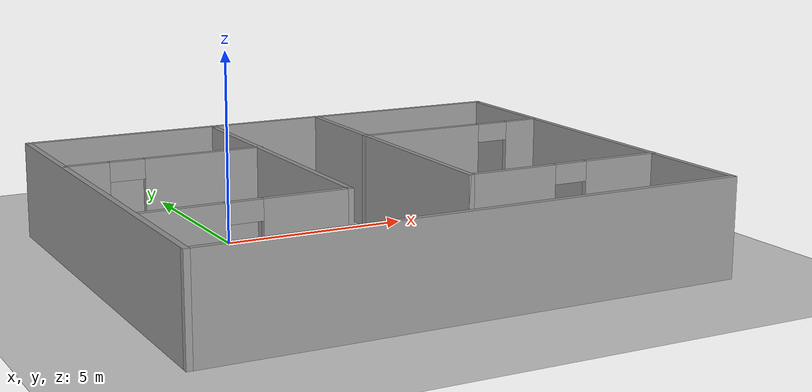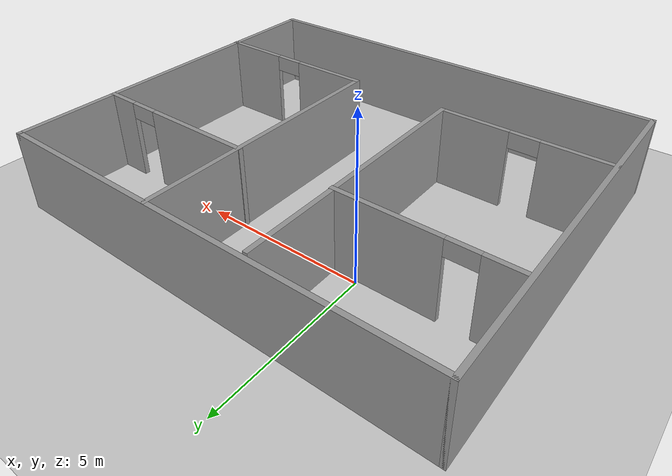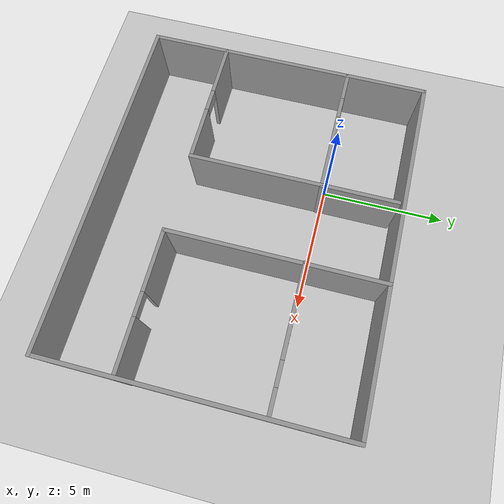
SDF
<sdf version="1.7">
 <world name="default">
  <light name="sun" type="directional">
   <pose>0 0 10 0 -0 0</pose>
   <diffuse>0.8 0.8 0.8 1</diffuse>
   <specular>0.2 0.2 0.2 1</specular>
   <attenuation>
    <range>1000</range>
    <constant>0.9</constant>
    <linear>0.01</linear>
    <quadratic>0.001</quadratic>
   </attenuation>
   <direction>-0.5 0.1 -0.9</direction>
   <spot><inner_angle>0</inner_angle><outer_angle>0</outer_angle><falloff>0</falloff></spot>
  </light>
  <model name="ground_plane">
   <static>1</static>
   <link name="link">
    <collision name="collision">
     <geometry><plane><normal>0 0 1</normal><size>100 100</size></plane></geometry>
     <surface>
      <contact><collide_bitmask>65535</collide_bitmask></contact>
      <friction><ode><mu>100</mu><mu2>50</mu2></ode></friction>
     </surface>
    </collision>
    <visual name="visual">
     <cast_shadows>0</cast_shadows>
     <geometry><plane><normal>0 0 1</normal><size>100 100</size></plane></geometry>
     <material>
      <script><uri>file://media/materials/scripts/gazebo.material</uri><name>Gazebo/Grey</name></script>
     </material>
    </visual>
   </link>
  </model>
  <gravity>0 0 -9.8</gravity>
  <magnetic_field>6e-06 2.3e-05 -4.2e-05</magnetic_field>
  <atmosphere type="adiabatic"/>
  <physics type="ode">
   <max_step_size>0.001</max_step_size>
   <real_time_factor>1</real_time_factor>
   <real_time_update_rate>1000</real_time_update_rate>
  </physics>
  <scene><ambient>0.4 0.4 0.4 1</ambient><background>0.7 0.7 0.7 1</background><shadows>1</shadows></scene>
  <audio><device>default</device></audio>
  <spherical_coordinates>
   <surface_model>EARTH_WGS84</surface_model>
   <latitude_deg>0</latitude_deg>
   <longitude_deg>0</longitude_deg>
   <elevation>0</elevation>
   <heading_deg>0</heading_deg>
  </spherical_coordinates>
  <model name="floor_plan2">
   <pose>2.50661 -2.68115 0 0 -0 0</pose>
   <link name="Wall_0">
    <collision name="Wall_0_Collision">
     <geometry><box><size>13.75 0.15 2.5</size></box></geometry>
     <pose>0 0 1.25 0 -0 0</pose>
    </collision>
    <visual name="Wall_0_Visual">
     <pose>0 0 1.25 0 -0 0</pose>
     <geometry><box><size>13.75 0.15 2.5</size></box></geometry>
     <material>
      <script><uri>file://media/materials/scripts/gazebo.material</uri><name>Gazebo/Grey</name></script>
      <ambient>1 1 1 1</ambient>
     </material>
     <meta><layer>0</layer></meta>
    </visual>
    <pose>-0.007216 5.675 0 0 -0 0</pose>
   </link>
   <link name="Wall_1">
    <collision name="Wall_1_Collision">
     <geometry><box><size>11.5 0.15 2.5</size></box></geometry>
     <pose>0 0 1.25 0 -0 0</pose>
    </collision>
    <visual name="Wall_1_Visual">
     <pose>0 0 1.25 0 -0 0</pose>
     <geometry><box><size>11.5 0.15 2.5</size></box></geometry>
     <material>
      <script><uri>file://media/materials/scripts/gazebo.material</uri><name>Gazebo/Grey</name></script>
      <ambient>1 1 1 1</ambient>
     </material>
     <meta><layer>0</layer></meta>
    </visual>
    <pose>6.79278 0 0 0 -0 -1.5708</pose>
   </link>
   <link name="Wall_11">
    <pose>-4.22728 2.52503 0 0 -0 0</pose>
    <visual name="Wall_11_Visual_0">
     <pose>-2.03762 0 1.25 0 -0 0</pose>
     <geometry><box><size>1.17475 0.15 2.5</size></box></geometry>
     <material>
      <script><uri>file://media/materials/scripts/gazebo.material</uri><name>Gazebo/Grey</name></script>
      <ambient>1 1 1 1</ambient>
     </material>
     <meta><layer>0</layer></meta>
    </visual>
    <collision name="Wall_11_Collision_0">
     <geometry><box><size>1.17475 0.15 2.5</size></box></geometry>
     <pose>-2.03762 0 1.25 0 -0 0</pose>
    </collision>
    <visual name="Wall_11_Visual_1">
     <pose>1.03737 0 1.25 0 -0 0</pose>
     <geometry><box><size>3.17525 0.15 2.5</size></box></geometry>
     <material>
      <script><uri>file://media/materials/scripts/gazebo.material</uri><name>Gazebo/Grey</name></script>
      <ambient>1 1 1 1</ambient>
     </material>
     <meta><layer>0</layer></meta>
    </visual>
    <collision name="Wall_11_Collision_1">
     <geometry><box><size>3.17525 0.15 2.5</size></box></geometry>
     <pose>1.03737 0 1.25 0 -0 0</pose>
    </collision>
    <visual name="Wall_11_Visual_2">
     <pose>-1.00025 0 2.25 0 -0 0</pose>
     <geometry><box><size>0.9 0.15 0.5</size></box></geometry>
     <material>
      <script><uri>file://media/materials/scripts/gazebo.material</uri><name>Gazebo/Grey</name></script>
      <ambient>1 1 1 1</ambient>
     </material>
     <meta><layer>0</layer></meta>
    </visual>
    <collision name="Wall_11_Collision_2">
     <geometry><box><size>0.9 0.15 0.5</size></box></geometry>
     <pose>-1.00025 0 2.25 0 -0 0</pose>
    </collision>
   </link>
   <link name="Wall_13">
    <pose>4.10909 2.59443 0 0 -0 0</pose>
    <visual name="Wall_13_Visual_0">
     <pose>-0.982964 0 1.25 0 -0 0</pose>
     <geometry><box><size>3.53407 0.15 2.5</size></box></geometry>
     <material>
      <script><uri>file://media/materials/scripts/gazebo.material</uri><name>Gazebo/Grey</name></script>
      <ambient>1 1 1 1</ambient>
     </material>
     <meta><layer>0</layer></meta>
    </visual>
    <collision name="Wall_13_Collision_0">
     <geometry><box><size>3.53407 0.15 2.5</size></box></geometry>
     <pose>-0.982964 0 1.25 0 -0 0</pose>
    </collision>
    <visual name="Wall_13_Visual_1">
     <pose>2.21704 0 1.25 0 -0 0</pose>
     <geometry><box><size>1.06593 0.15 2.5</size></box></geometry>
     <material>
      <script><uri>file://media/materials/scripts/gazebo.material</uri><name>Gazebo/Grey</name></script>
      <ambient>1 1 1 1</ambient>
     </material>
     <meta><layer>0</layer></meta>
    </visual>
    <collision name="Wall_13_Collision_1">
     <geometry><box><size>1.06593 0.15 2.5</size></box></geometry>
     <pose>2.21704 0 1.25 0 -0 0</pose>
    </collision>
    <visual name="Wall_13_Visual_2">
     <pose>1.23407 0 2.25 0 -0 0</pose>
     <geometry><box><size>0.9 0.15 0.5</size></box></geometry>
     <material>
      <script><uri>file://media/materials/scripts/gazebo.material</uri><name>Gazebo/Grey</name></script>
      <ambient>1 1 1 1</ambient>
     </material>
     <meta><layer>0</layer></meta>
    </visual>
    <collision name="Wall_13_Collision_2">
     <geometry><box><size>0.9 0.15 0.5</size></box></geometry>
     <pose>1.23407 0 2.25 0 -0 0</pose>
    </collision>
   </link>
   <link name="Wall_2">
    <collision name="Wall_2_Collision">
     <geometry><box><size>13.75 0.15 2.5</size></box></geometry>
     <pose>0 0 1.25 0 -0 0</pose>
    </collision>
    <visual name="Wall_2_Visual">
     <pose>0 0 1.25 0 -0 0</pose>
     <geometry><box><size>13.75 0.15 2.5</size></box></geometry>
     <material>
      <script><uri>file://media/materials/scripts/gazebo.material</uri><name>Gazebo/Grey</name></script>
      <ambient>1 1 1 1</ambient>
     </material>
     <meta><layer>0</layer></meta>
    </visual>
    <pose>-0.007216 -5.675 0 0 -0 3.14159</pose>
   </link>
   <link name="Wall_3">
    <collision name="Wall_3_Collision">
     <geometry><box><size>11.5 0.15 2.5</size></box></geometry>
     <pose>0 0 1.25 0 -0 0</pose>
    </collision>
    <visual name="Wall_3_Visual">
     <pose>0 0 1.25 0 -0 0</pose>
     <geometry><box><size>11.5 0.15 2.5</size></box></geometry>
     <material>
      <script><uri>file://media/materials/scripts/gazebo.material</uri><name>Gazebo/Grey</name></script>
      <ambient>1 1 1 1</ambient>
     </material>
     <meta><layer>0</layer></meta>
    </visual>
    <pose>-6.80722 0 0 0 -0 1.5708</pose>
   </link>
   <link name="Wall_5">
    <pose>-4.25041 -2.63309 0 0 -0 0</pose>
    <visual name="Wall_5_Visual_0">
     <pose>-1.56345 0 1.25 0 -0 0</pose>
     <geometry><box><size>2.1231 0.15 2.5</size></box></geometry>
     <material>
      <script><uri>file://media/materials/scripts/gazebo.material</uri><name>Gazebo/Grey</name></script>
      <ambient>1 1 1 1</ambient>
     </material>
     <meta><layer>0</layer></meta>
    </visual>
    <collision name="Wall_5_Collision_0">
     <geometry><box><size>2.1231 0.15 2.5</size></box></geometry>
     <pose>-1.56345 0 1.25 0 -0 0</pose>
    </collision>
    <visual name="Wall_5_Visual_1">
     <pose>1.51155 0 1.25 0 -0 0</pose>
     <geometry><box><size>2.22689 0.15 2.5</size></box></geometry>
     <material>
      <script><uri>file://media/materials/scripts/gazebo.material</uri><name>Gazebo/Grey</name></script>
      <ambient>1 1 1 1</ambient>
     </material>
     <meta><layer>0</layer></meta>
    </visual>
    <collision name="Wall_5_Collision_1">
     <geometry><box><size>2.22689 0.15 2.5</size></box></geometry>
     <pose>1.51155 0 1.25 0 -0 0</pose>
    </collision>
    <visual name="Wall_5_Visual_2">
     <pose>-0.051895 0 2.25 0 -0 0</pose>
     <geometry><box><size>0.9 0.15 0.5</size></box></geometry>
     <material>
      <script><uri>file://media/materials/scripts/gazebo.material</uri><name>Gazebo/Grey</name></script>
      <ambient>1 1 1 1</ambient>
     </material>
     <meta><layer>0</layer></meta>
    </visual>
    <collision name="Wall_5_Collision_2">
     <geometry><box><size>0.9 0.15 0.5</size></box></geometry>
     <pose>-0.051895 0 2.25 0 -0 0</pose>
    </collision>
   </link>
   <link name="Wall_6">
    <collision name="Wall_6_Collision">
     <geometry><box><size>8.25 0.15 2.5</size></box></geometry>
     <pose>0 0 1.25 0 -0 0</pose>
    </collision>
    <visual name="Wall_6_Visual">
     <pose>0 0 1.25 0 -0 0</pose>
     <geometry><box><size>8.25 0.15 2.5</size></box></geometry>
     <material>
      <script><uri>file://media/materials/scripts/gazebo.material</uri><name>Gazebo/Grey</name></script>
      <ambient>1 1 1 1</ambient>
     </material>
     <meta><layer>0</layer></meta>
    </visual>
    <pose>-1.70041 1.41691 0 0 -0 1.5708</pose>
   </link>
   <link name="Wall_8">
    <collision name="Wall_8_Collision">
     <geometry><box><size>8.5 0.15 2.5</size></box></geometry>
     <pose>0 0 1.25 0 -0 0</pose>
    </collision>
    <visual name="Wall_8_Visual">
     <pose>0 0 1.25 0 -0 0</pose>
     <geometry><box><size>8.5 0.15 2.5</size></box></geometry>
     <material>
      <script><uri>file://media/materials/scripts/gazebo.material</uri><name>Gazebo/Grey</name></script>
      <ambient>1 1 1 1</ambient>
     </material>
     <meta><layer>0</layer></meta>
    </visual>
    <pose>1.45722 1.4958 0 0 -0 -1.5708</pose>
   </link>
   <link name="Wall_9">
    <pose>4.13222 -2.6792 0 0 -0 0</pose>
    <visual name="Wall_9_Visual_0">
     <pose>-1.52653 0 1.25 0 -0 0</pose>
     <geometry><box><size>2.44693 0.15 2.5</size></box></geometry>
     <material>
      <script><uri>file://media/materials/scripts/gazebo.material</uri><name>Gazebo/Grey</name></script>
      <ambient>1 1 1 1</ambient>
     </material>
     <meta><layer>0</layer></meta>
    </visual>
    <collision name="Wall_9_Collision_0">
     <geometry><box><size>2.44693 0.15 2.5</size></box></geometry>
     <pose>-1.52653 0 1.25 0 -0 0</pose>
    </collision>
    <visual name="Wall_9_Visual_1">
     <pose>1.67347 0 1.25 0 -0 0</pose>
     <geometry><box><size>2.15307 0.15 2.5</size></box></geometry>
     <material>
      <script><uri>file://media/materials/scripts/gazebo.material</uri><name>Gazebo/Grey</name></script>
      <ambient>1 1 1 1</ambient>
     </material>
     <meta><layer>0</layer></meta>
    </visual>
    <collision name="Wall_9_Collision_1">
     <geometry><box><size>2.15307 0.15 2.5</size></box></geometry>
     <pose>1.67347 0 1.25 0 -0 0</pose>
    </collision>
    <visual name="Wall_9_Visual_2">
     <pose>0.146934 0 2.25 0 -0 0</pose>
     <geometry><box><size>0.9 0.15 0.5</size></box></geometry>
     <material>
      <script><uri>file://media/materials/scripts/gazebo.material</uri><name>Gazebo/Grey</name></script>
      <ambient>1 1 1 1</ambient>
     </material>
     <meta><layer>0</layer></meta>
    </visual>
    <collision name="Wall_9_Collision_2">
     <geometry><box><size>0.9 0.15 0.5</size></box></geometry>
     <pose>0.146934 0 2.25 0 -0 0</pose>
    </collision>
   </link>
   <static>1</static>
  </model>
 </world>
</sdf>
